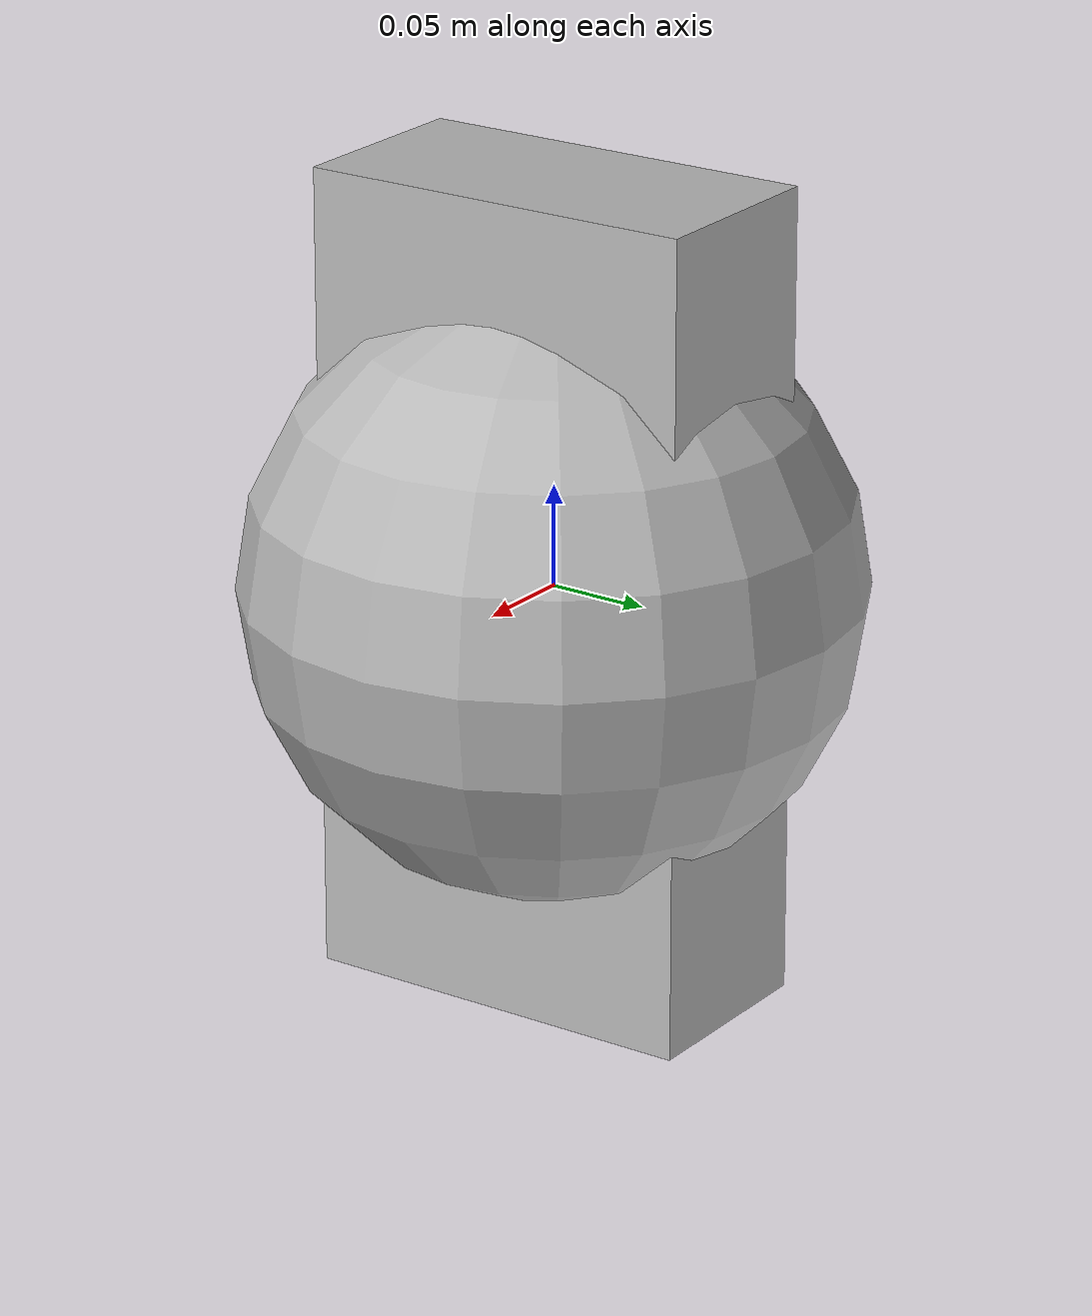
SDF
<?xml version='1.0' encoding='utf-8'?>
<sdf version="1.7">
  <model name="link_multiple_visuals">
    <link name="link">
      <visual name="link_visual_1">
        <geometry>
          <box>
            <size>0.1 0.2 0.4</size>
          </box>
        </geometry>
      </visual>
      <visual name="link_visual_2">
        <geometry>
          <sphere>
            <radius>0.15</radius>
          </sphere>
        </geometry>
      </visual>
      <collision name="link_collision">
        <geometry>
          <box>
            <size>0.1 0.2 0.4</size>
          </box>
        </geometry>
      </collision>
      <inertial>
        <mass>1.23</mass>
        <inertia>
          <ixx>0.0205</ixx>
          <ixy>0</ixy>
          <ixz>0</ixz>
          <iyy>0.017425</iyy>
          <iyz>0</iyz>
          <izz>0.005125</izz>
        </inertia>
      </inertial>
    </link>
  </model>
</sdf>
